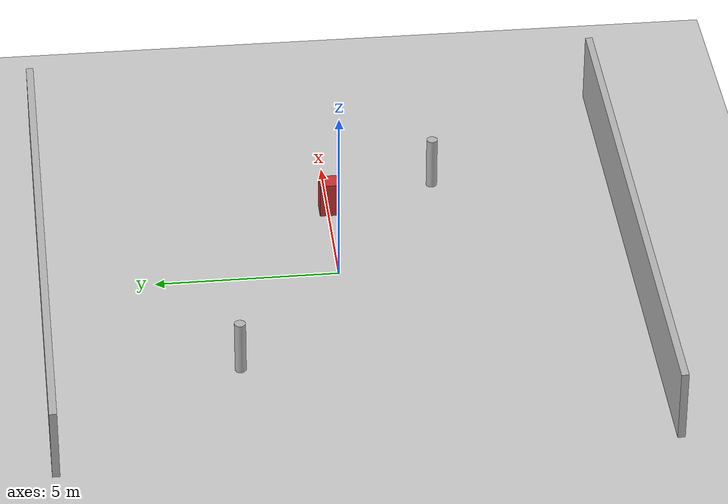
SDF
<!-- dynamic_obstacles world -->

<?xml version="1.0" ?>
<sdf version="1.6">
  <world name="dynamic_obstacles">
    <include>
      <uri>model://ground_plane</uri>
    </include>
    <include>
      <uri>model://sun</uri>
    </include>

    <!-- Dynamic obstacles world: moving objects -->
    <!-- Walls (enclosed area) -->
    <model name="wall_north">
      <static>true</static>
      <pose>0 8 1 0 0 0</pose>
      <link name="link">
        <collision name="collision">
          <geometry><box><size>16 0.2 2</size></box></geometry>
        </collision>
        <visual name="visual">
          <geometry><box><size>16 0.2 2</size></box></geometry>
        </visual>
      </link>
    </model>

    <model name="wall_south">
      <static>true</static>
      <pose>0 -8 1 0 0 0</pose>
      <link name="link">
        <collision name="collision">
          <geometry><box><size>16 0.2 2</size></box></geometry>
        </collision>
        <visual name="visual">
          <geometry><box><size>16 0.2 2</size></box></geometry>
        </visual>
      </link>
    </model>

    <!-- Moving obstacle (box on a rail) -->
    <model name="moving_box">
      <pose>3 0 0.5 0 0 0</pose>
      <link name="link">
        <inertial>
          <mass>5.0</mass>
        </inertial>
        <collision name="collision">
          <geometry><box><size>0.5 0.5 1.0</size></box></geometry>
        </collision>
        <visual name="visual">
          <geometry><box><size>0.5 0.5 1.0</size></box></geometry>
          <material><ambient>0.8 0.2 0.2 1</ambient></material>
        </visual>
      </link>
    </model>

    <!-- Static pillars for LiDAR reference -->
    <model name="pillar1">
      <static>true</static>
      <pose>-4 3 0.75 0 0 0</pose>
      <link name="link">
        <collision name="collision">
          <geometry><cylinder><radius>0.15</radius><length>1.5</length></cylinder></geometry>
        </collision>
        <visual name="visual">
          <geometry><cylinder><radius>0.15</radius><length>1.5</length></cylinder></geometry>
        </visual>
      </link>
    </model>

    <model name="pillar2">
      <static>true</static>
      <pose>4 -3 0.75 0 0 0</pose>
      <link name="link">
        <collision name="collision">
          <geometry><cylinder><radius>0.15</radius><length>1.5</length></cylinder></geometry>
        </collision>
        <visual name="visual">
          <geometry><cylinder><radius>0.15</radius><length>1.5</length></cylinder></geometry>
        </visual>
      </link>
    </model>

    <physics type="ode">
      <max_step_size>0.001</max_step_size>
      <real_time_factor>1</real_time_factor>
    </physics>
  </world>
</sdf>
